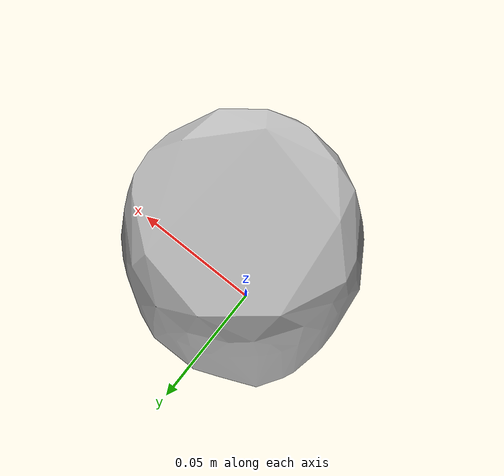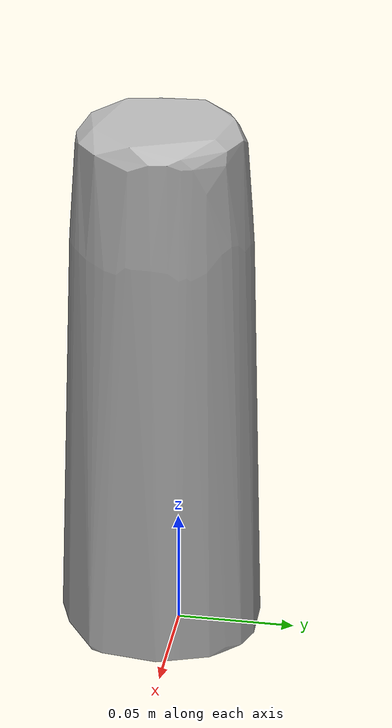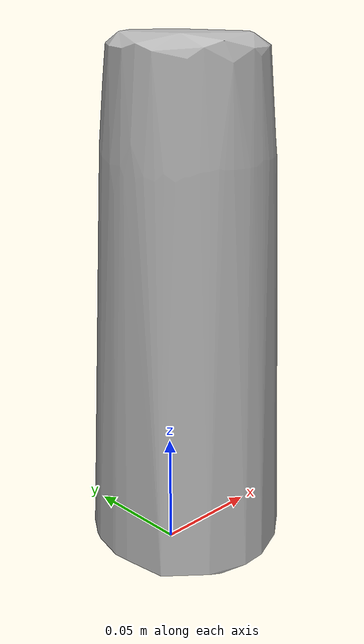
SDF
<?xml version='1.0'?>
<sdf version="1.4">
  <model name="3m_high_tack_spray_adhesive">
    <static>false</static>
    <link name="link">
      <inertial>
        <pose>0.005578393779209325 -0.006010697382859226 0.11096618371292802 0.005177118940836479 -0.00339817488084801 2.694095215471124</pose>
        <mass>0.080653573521491269</mass>
        <inertia>
          <ixx>0.0004794091376281353</ixx>
          <ixy>-3.0725032855195195e-20</ixy>
          <ixz>2.2001780192508405e-20</ixz>
          <iyy>0.00047875851408435996</iyy>
          <iyz>-2.025660284224868e-20</iyz>
          <izz>8.116741445866548e-05</izz>
        </inertia>
      </inertial>
      <collision name="collision">
        <geometry>
          <mesh>
            <!-- Use a downsampled mesh for collisions -->
            <uri>model:///3m_high_tack_spray_adhesive/3m_high_tack_spray_adhesive_250_collision.obj</uri>
	        </mesh>
        </geometry>
        <surface>
      </surface>
      </collision>
      <visual name="visual">
        <geometry>
          <mesh>
            <uri>model:///3m_high_tack_spray_adhesive/optimized_tsdf_texture_mapped_mesh.obj</uri>
	        </mesh>
        </geometry>
        <material>
          <script>
            <uri>model:///3m_high_tack_spray_adhesive/3m_high_tack_spray_adhesive.material</uri>
            <name>3m_high_tack_spray_adhesive</name>
          </script>
        </material>
      </visual>
    </link>
  </model>
</sdf>
